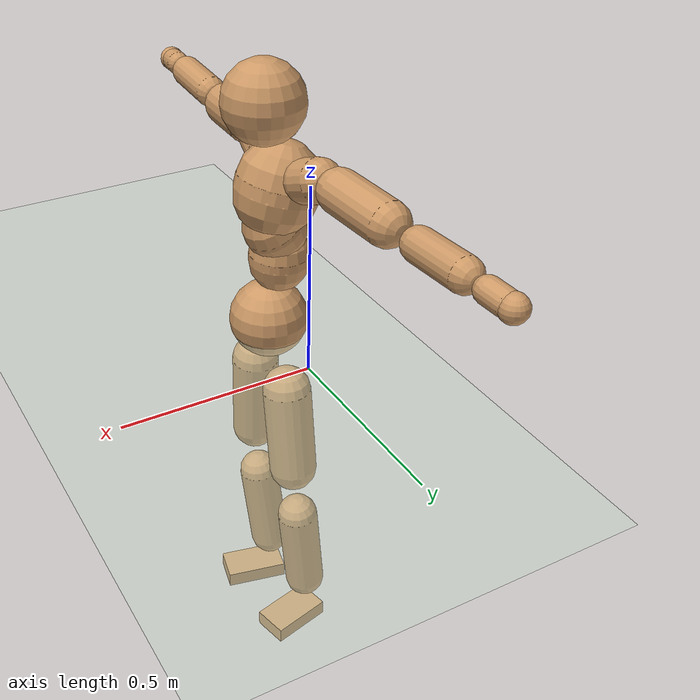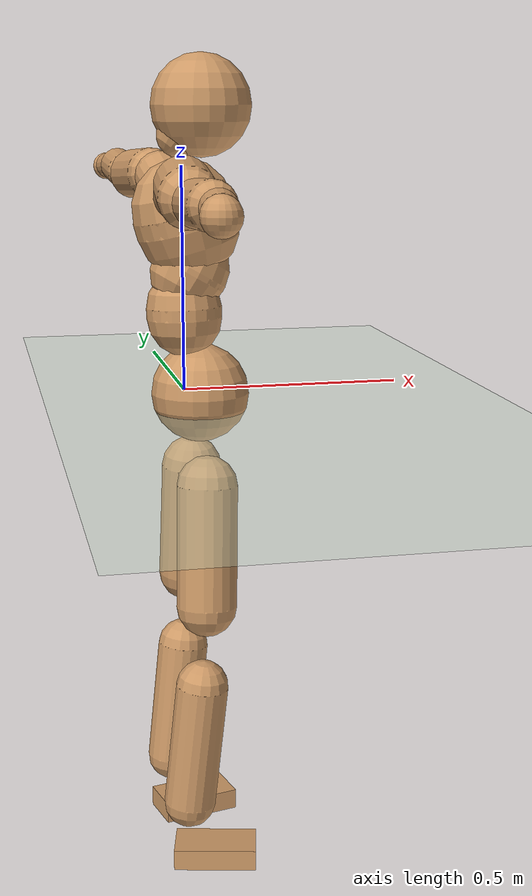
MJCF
<mujoco model="humanoid">
  <compiler coordinate="local" angle="radian"/>
  <default>
    <joint damping="0.0" armature="0.01" stiffness="0.0" limited="true"/>
    <geom conaffinity="1" condim="3" contype="7" margin="0.001" rgba="0.8 0.6 .4 1"/>
  </default>
  <asset>
    <texture type="skybox" builtin="gradient" rgb1=".4 .5 .6" rgb2="0 0 0" width="100" height="100"/>
    <texture builtin="flat" height="1278" mark="cross" markrgb="1 1 1" name="texgeom" random="0.01" rgb1="0.8 0.6 0.4" rgb2="0.8 0.6 0.4" type="cube" width="127"/>
    <texture builtin="checker" height="100" name="texplane" rgb1="0 0 0" rgb2="0.8 0.8 0.8" type="2d" width="100"/>
    <material name="MatPlane" reflectance="0.5" shininess="1" specular="1" texrepeat="60 60" texture="texplane"/>
    <material name="geom" texture="texgeom" texuniform="true"/>
  </asset>
  <worldbody>
    <light cutoff="100" diffuse="1 1 1" dir="-0 0 -1.3" directional="true" exponent="1" pos="0 0 1.3" specular=".1 .1 .1"/>
    <geom conaffinity="1" condim="3" name="floor" pos="0 0 0" rgba="0.8 0.9 0.8 1" size="100 100 .2" type="plane" material="MatPlane"/>
    <body name="Pelvis" pos="0.0007 -0.2106 0.0368">
      <freejoint name="Pelvis"/>
      <geom type="sphere" contype="1" conaffinity="1" density="500" size="0.1047" pos="0.0000 0.0000 0.0000" name="Pelvis"/>
      <body name="L_Hip" pos="-0.0036 0.0805 -0.097">
        <joint name="L_Hip_x" type="hinge" pos="0 0 0" axis="1 0 0" stiffness="800" damping="80" armature="0.02" range="-180.0000 180.0000"/>
        <joint name="L_Hip_y" type="hinge" pos="0 0 0" axis="0 1 0" stiffness="800" damping="80" armature="0.02" range="-180.0000 180.0000"/>
        <joint name="L_Hip_z" type="hinge" pos="0 0 0" axis="0 0 1" stiffness="800" damping="80" armature="0.02" range="-180.0000 180.0000"/>
        <geom type="capsule" contype="1" conaffinity="1" density="500" fromto="-0.0025 0.0074 -0.0855 -0.0100 0.0296 -0.3421" size="0.0657" name="L_Hip"/>
        <body name="L_Knee" pos="-0.0125 0.037 -0.4276">
          <joint name="L_Knee_x" type="hinge" pos="0 0 0" axis="1 0 0" stiffness="800" damping="80" armature="0.02" range="-180.0000 180.0000"/>
          <joint name="L_Knee_y" type="hinge" pos="0 0 0" axis="0 1 0" stiffness="800" damping="80" armature="0.02" range="-180.0000 180.0000"/>
          <joint name="L_Knee_z" type="hinge" pos="0 0 0" axis="0 0 1" stiffness="800" damping="80" armature="0.02" range="-180.0000 180.0000"/>
          <geom type="capsule" contype="1" conaffinity="1" density="500" fromto="-0.0102 -0.0025 -0.0923 -0.0406 -0.0099 -0.3691" size="0.0565" name="L_Knee"/>
          <body name="L_Ankle" pos="-0.0508 -0.0124 -0.4613">
            <joint name="L_Ankle_x" type="hinge" pos="0 0 0" axis="1 0 0" stiffness="800" damping="80" armature="0.02" range="-180.0000 180.0000"/>
            <joint name="L_Ankle_y" type="hinge" pos="0 0 0" axis="0 1 0" stiffness="800" damping="80" armature="0.02" range="-180.0000 180.0000"/>
            <joint name="L_Ankle_z" type="hinge" pos="0 0 0" axis="0 0 1" stiffness="800" damping="80" armature="0.02" range="-180.0000 180.0000"/>
            <geom type="box" contype="1" conaffinity="1" density="500" pos="0.0625 0.0145 -0.0328" size="0.0872 0.0499 0.0233" quat="0.9935 0.0000 0.0000 0.1140" name="L_Ankle"/>
            <body name="L_Toe" pos="0.125 0.0291 -0.0655">
              <joint name="L_Toe_x" type="hinge" pos="0 0 0" axis="1 0 0" stiffness="500" damping="50" armature="0.02" range="-180.0000 180.0000"/>
              <joint name="L_Toe_y" type="hinge" pos="0 0 0" axis="0 1 0" stiffness="500" damping="50" armature="0.02" range="-180.0000 180.0000"/>
              <joint name="L_Toe_z" type="hinge" pos="0 0 0" axis="0 0 1" stiffness="500" damping="50" armature="0.02" range="-180.0000 180.0000"/>
              <geom type="box" contype="1" conaffinity="1" density="500" pos="0.0000 0.0000 0.0322" size="0.001 0.0025 0.0011" quat="0.9928 0.0000 0.0000 0.1197" name="L_Toe"/>
            </body>
          </body>
        </body>
      </body>
      <body name="R_Hip" pos="0.0011 -0.0778 -0.097">
        <joint name="R_Hip_x" type="hinge" pos="0 0 0" axis="1 0 0" stiffness="800" damping="80" armature="0.02" range="-180.0000 180.0000"/>
        <joint name="R_Hip_y" type="hinge" pos="0 0 0" axis="0 1 0" stiffness="800" damping="80" armature="0.02" range="-180.0000 180.0000"/>
        <joint name="R_Hip_z" type="hinge" pos="0 0 0" axis="0 0 1" stiffness="800" damping="80" armature="0.02" range="-180.0000 180.0000"/>
        <geom type="capsule" contype="1" conaffinity="1" density="500" fromto="-0.0028 -0.0092 -0.0868 -0.0112 -0.0369 -0.3473" size="0.0647" name="R_Hip"/>
        <body name="R_Knee" pos="-0.014 -0.0461 -0.4342">
          <joint name="R_Knee_x" type="hinge" pos="0 0 0" axis="1 0 0" stiffness="800" damping="80" armature="0.02" range="-180.0000 180.0000"/>
          <joint name="R_Knee_y" type="hinge" pos="0 0 0" axis="0 1 0" stiffness="800" damping="80" armature="0.02" range="-180.0000 180.0000"/>
          <joint name="R_Knee_z" type="hinge" pos="0 0 0" axis="0 0 1" stiffness="800" damping="80" armature="0.02" range="-180.0000 180.0000"/>
          <geom type="capsule" contype="1" conaffinity="1" density="500" fromto="-0.0097 0.0032 -0.0928 -0.0386 0.0129 -0.3710" size="0.0567" name="R_Knee"/>
          <body name="R_Ankle" pos="-0.0483 0.0161 -0.4638">
            <joint name="R_Ankle_x" type="hinge" pos="0 0 0" axis="1 0 0" stiffness="800" damping="80" armature="0.02" range="-180.0000 180.0000"/>
            <joint name="R_Ankle_y" type="hinge" pos="0 0 0" axis="0 1 0" stiffness="800" damping="80" armature="0.02" range="-180.0000 180.0000"/>
            <joint name="R_Ankle_z" type="hinge" pos="0 0 0" axis="0 0 1" stiffness="800" damping="80" armature="0.02" range="-180.0000 180.0000"/>
            <geom type="box" contype="1" conaffinity="1" density="500" pos="0.0649 -0.0145 -0.0281" size="0.0901 0.0497 0.0233" quat="0.9939 0.0000 0.0000 -0.1099" name="R_Ankle"/>
            <body name="R_Toe" pos="0.1298 -0.029 -0.0561">
              <joint name="R_Toe_x" type="hinge" pos="0 0 0" axis="1 0 0" stiffness="500" damping="50" armature="0.02" range="-180.0000 180.0000"/>
              <joint name="R_Toe_y" type="hinge" pos="0 0 0" axis="0 1 0" stiffness="500" damping="50" armature="0.02" range="-180.0000 180.0000"/>
              <joint name="R_Toe_z" type="hinge" pos="0 0 0" axis="0 0 1" stiffness="500" damping="50" armature="0.02" range="-180.0000 180.0000"/>
              <geom type="box" contype="1" conaffinity="1" density="500" pos="0.0000 0.0000 0.0303" size="0.0009 0.0025 0.0013" quat="0.9949 0.0000 0.0000 -0.1011" name="R_Toe"/>
            </body>
          </body>
        </body>
      </body>
      <body name="Torso" pos="-0.0306 -0.0025 0.1118">
        <joint name="Torso_x" type="hinge" pos="0 0 0" axis="1 0 0" stiffness="1000" damping="100" armature="0.02" range="-180.0000 180.0000"/>
        <joint name="Torso_y" type="hinge" pos="0 0 0" axis="0 1 0" stiffness="1000" damping="100" armature="0.02" range="-180.0000 180.0000"/>
        <joint name="Torso_z" type="hinge" pos="0 0 0" axis="0 0 1" stiffness="1000" damping="100" armature="0.02" range="-180.0000 180.0000"/>
        <geom type="capsule" contype="1" conaffinity="1" density="500" fromto="-0.0022 0.0019 0.0727 -0.0015 0.0013 0.0485" size="0.0793" name="Torso"/>
        <body name="Spine" pos="-0.0037 0.0031 0.1212">
          <joint name="Spine_x" type="hinge" pos="0 0 0" axis="1 0 0" stiffness="1000" damping="100" armature="0.02" range="-180.0000 180.0000"/>
          <joint name="Spine_y" type="hinge" pos="0 0 0" axis="0 1 0" stiffness="1000" damping="100" armature="0.02" range="-180.0000 180.0000"/>
          <joint name="Spine_z" type="hinge" pos="0 0 0" axis="0 0 1" stiffness="1000" damping="100" armature="0.02" range="-180.0000 180.0000"/>
          <geom type="capsule" contype="1" conaffinity="1" density="500" fromto="0.0181 0.0006 0.0312 0.0121 0.0004 0.0208" size="0.0814" name="Spine"/>
          <body name="Chest" pos="0.0302 0.001 0.052">
            <joint name="Chest_x" type="hinge" pos="0 0 0" axis="1 0 0" stiffness="1000" damping="100" armature="0.02" range="-180.0000 180.0000"/>
            <joint name="Chest_y" type="hinge" pos="0 0 0" axis="0 1 0" stiffness="1000" damping="100" armature="0.02" range="-180.0000 180.0000"/>
            <joint name="Chest_z" type="hinge" pos="0 0 0" axis="0 0 1" stiffness="1000" damping="100" armature="0.02" range="-180.0000 180.0000"/>
            <geom type="capsule" contype="1" conaffinity="1" density="500" fromto="-0.0275 -0.0011 0.0984 -0.0183 -0.0007 0.0656" size="0.1083" name="Chest"/>
            <body name="Neck" pos="-0.0486 -0.0033 0.2349">
              <joint name="Neck_x" type="hinge" pos="0 0 0" axis="1 0 0" stiffness="500" damping="50" armature="0.02" range="-180.0000 180.0000"/>
              <joint name="Neck_y" type="hinge" pos="0 0 0" axis="0 1 0" stiffness="500" damping="50" armature="0.02" range="-180.0000 180.0000"/>
              <joint name="Neck_z" type="hinge" pos="0 0 0" axis="0 0 1" stiffness="500" damping="50" armature="0.02" range="-180.0000 180.0000"/>
              <geom type="capsule" contype="1" conaffinity="1" density="500" fromto="0.0121 0.0007 0.0147 0.0485 0.0027 0.0590" size="0.045" name="Neck"/>
              <body name="Head" pos="0.0606 0.0034 0.0737">
                <joint name="Head_x" type="hinge" pos="0 0 0" axis="1 0 0" stiffness="500" damping="50" armature="0.02" range="-180.0000 180.0000"/>
                <joint name="Head_y" type="hinge" pos="0 0 0" axis="0 1 0" stiffness="500" damping="50" armature="0.02" range="-180.0000 180.0000"/>
                <joint name="Head_z" type="hinge" pos="0 0 0" axis="0 0 1" stiffness="500" damping="50" armature="0.02" range="-180.0000 180.0000"/>
                <geom type="sphere" contype="1" conaffinity="1" density="500" size="0.1045" pos="0.0000 0.0000 0.0000" name="Head"/>
              </body>
            </body>
            <body name="L_Thorax" pos="-0.0419 0.0845 0.1293">
              <joint name="L_Thorax_x" type="hinge" pos="0 0 0" axis="1 0 0" stiffness="500" damping="50" armature="0.02" range="-180.0000 180.0000"/>
              <joint name="L_Thorax_y" type="hinge" pos="0 0 0" axis="0 1 0" stiffness="500" damping="50" armature="0.02" range="-180.0000 180.0000"/>
              <joint name="L_Thorax_z" type="hinge" pos="0 0 0" axis="0 0 1" stiffness="500" damping="50" armature="0.02" range="-180.0000 180.0000"/>
              <geom type="capsule" contype="1" conaffinity="1" density="500" fromto="-0.0021 0.0180 0.0072 -0.0086 0.0719 0.0287" size="0.0557" name="L_Thorax"/>
              <body name="L_Shoulder" pos="-0.0107 0.0899 0.0359">
                <joint name="L_Shoulder_x" type="hinge" pos="0 0 0" axis="1 0 0" stiffness="500" damping="50" armature="0.02" range="-720.0000 720.0000"/>
                <joint name="L_Shoulder_y" type="hinge" pos="0 0 0" axis="0 1 0" stiffness="500" damping="50" armature="0.02" range="-720.0000 720.0000"/>
                <joint name="L_Shoulder_z" type="hinge" pos="0 0 0" axis="0 0 1" stiffness="500" damping="50" armature="0.02" range="-720.0000 720.0000"/>
                <geom type="capsule" contype="1" conaffinity="1" density="500" fromto="-0.0061 0.0570 -0.0033 -0.0245 0.2280 -0.0131" size="0.0553" name="L_Shoulder"/>
                <body name="L_Elbow" pos="-0.0307 0.285 -0.0163">
                  <joint name="L_Elbow_x" type="hinge" pos="0 0 0" axis="1 0 0" stiffness="500" damping="50" armature="0.02" range="-720.0000 720.0000"/>
                  <joint name="L_Elbow_y" type="hinge" pos="0 0 0" axis="0 1 0" stiffness="500" damping="50" armature="0.02" range="-720.0000 720.0000"/>
                  <joint name="L_Elbow_z" type="hinge" pos="0 0 0" axis="0 0 1" stiffness="500" damping="50" armature="0.02" range="-720.0000 720.0000"/>
                  <geom type="capsule" contype="1" conaffinity="1" density="500" fromto="-0.0000 0.0526 0.0026 -0.0002 0.2102 0.0104" size="0.0419" name="L_Elbow"/>
                  <body name="L_Wrist" pos="-0.0002 0.2628 0.013">
                    <joint name="L_Wrist_x" type="hinge" pos="0 0 0" axis="1 0 0" stiffness="300" damping="30" armature="0.02" range="-180.0000 180.0000"/>
                    <joint name="L_Wrist_y" type="hinge" pos="0 0 0" axis="0 1 0" stiffness="300" damping="30" armature="0.02" range="-180.0000 180.0000"/>
                    <joint name="L_Wrist_z" type="hinge" pos="0 0 0" axis="0 0 1" stiffness="300" damping="30" armature="0.02" range="-180.0000 180.0000"/>
                    <geom type="capsule" contype="1" conaffinity="1" density="500" fromto="-0.0028 0.0166 -0.0020 -0.0110 0.0663 -0.0081" size="0.0313" name="L_Wrist"/>
                    <body name="L_Hand" pos="-0.0138 0.0829 -0.0101">
                      <joint name="L_Hand_x" type="hinge" pos="0 0 0" axis="1 0 0" stiffness="300" damping="30" armature="0.02" range="-180.0000 180.0000"/>
                      <joint name="L_Hand_y" type="hinge" pos="0 0 0" axis="0 1 0" stiffness="300" damping="30" armature="0.02" range="-180.0000 180.0000"/>
                      <joint name="L_Hand_z" type="hinge" pos="0 0 0" axis="0 0 1" stiffness="300" damping="30" armature="0.02" range="-180.0000 180.0000"/>
                      <geom type="sphere" contype="1" conaffinity="1" density="500" size="0.0334" pos="0.0000 0.0000 0.0000" name="L_Hand"/>
                    </body>
                  </body>
                </body>
              </body>
            </body>
            <body name="R_Thorax" pos="-0.0471 -0.0867 0.1276">
              <joint name="R_Thorax_x" type="hinge" pos="0 0 0" axis="1 0 0" stiffness="500" damping="50" armature="0.02" range="-180.0000 180.0000"/>
              <joint name="R_Thorax_y" type="hinge" pos="0 0 0" axis="0 1 0" stiffness="500" damping="50" armature="0.02" range="-180.0000 180.0000"/>
              <joint name="R_Thorax_z" type="hinge" pos="0 0 0" axis="0 0 1" stiffness="500" damping="50" armature="0.02" range="-180.0000 180.0000"/>
              <geom type="capsule" contype="1" conaffinity="1" density="500" fromto="-0.0022 -0.0183 0.0078 -0.0089 -0.0733 0.0310" size="0.0544" name="R_Thorax"/>
              <body name="R_Shoulder" pos="-0.0111 -0.0916 0.0388">
                <joint name="R_Shoulder_x" type="hinge" pos="0 0 0" axis="1 0 0" stiffness="500" damping="50" armature="0.02" range="-720.0000 720.0000"/>
                <joint name="R_Shoulder_y" type="hinge" pos="0 0 0" axis="0 1 0" stiffness="500" damping="50" armature="0.02" range="-720.0000 720.0000"/>
                <joint name="R_Shoulder_z" type="hinge" pos="0 0 0" axis="0 0 1" stiffness="500" damping="50" armature="0.02" range="-720.0000 720.0000"/>
                <geom type="capsule" contype="1" conaffinity="1" density="500" fromto="-0.0053 -0.0554 -0.0039 -0.0212 -0.2215 -0.0155" size="0.0573" name="R_Shoulder"/>
                <body name="R_Elbow" pos="-0.0265 -0.2769 -0.0193">
                  <joint name="R_Elbow_x" type="hinge" pos="0 0 0" axis="1 0 0" stiffness="500" damping="50" armature="0.02" range="-720.0000 720.0000"/>
                  <joint name="R_Elbow_y" type="hinge" pos="0 0 0" axis="0 1 0" stiffness="500" damping="50" armature="0.02" range="-720.0000 720.0000"/>
                  <joint name="R_Elbow_z" type="hinge" pos="0 0 0" axis="0 0 1" stiffness="500" damping="50" armature="0.02" range="-720.0000 720.0000"/>
                  <geom type="capsule" contype="1" conaffinity="1" density="500" fromto="-0.0007 -0.0546 0.0027 -0.0029 -0.2183 0.0106" size="0.0427" name="R_Elbow"/>
                  <body name="R_Wrist" pos="-0.0036 -0.2728 0.0133">
                    <joint name="R_Wrist_x" type="hinge" pos="0 0 0" axis="1 0 0" stiffness="300" damping="30" armature="0.02" range="-180.0000 180.0000"/>
                    <joint name="R_Wrist_y" type="hinge" pos="0 0 0" axis="0 1 0" stiffness="300" damping="30" armature="0.02" range="-180.0000 180.0000"/>
                    <joint name="R_Wrist_z" type="hinge" pos="0 0 0" axis="0 0 1" stiffness="300" damping="30" armature="0.02" range="-180.0000 180.0000"/>
                    <geom type="capsule" contype="1" conaffinity="1" density="500" fromto="-0.0022 -0.0169 -0.0015 -0.0087 -0.0674 -0.0062" size="0.0324" name="R_Wrist"/>
                    <body name="R_Hand" pos="-0.0109 -0.0843 -0.0077">
                      <joint name="R_Hand_x" type="hinge" pos="0 0 0" axis="1 0 0" stiffness="300" damping="30" armature="0.02" range="-180.0000 180.0000"/>
                      <joint name="R_Hand_y" type="hinge" pos="0 0 0" axis="0 1 0" stiffness="300" damping="30" armature="0.02" range="-180.0000 180.0000"/>
                      <joint name="R_Hand_z" type="hinge" pos="0 0 0" axis="0 0 1" stiffness="300" damping="30" armature="0.02" range="-180.0000 180.0000"/>
                      <geom type="sphere" contype="1" conaffinity="1" density="500" size="0.0339" pos="0.0000 0.0000 0.0000" name="R_Hand"/>
                    </body>
                  </body>
                </body>
              </body>
            </body>
          </body>
        </body>
      </body>
    </body>
  </worldbody>
  <actuator>
    <motor name="L_Hip_x" joint="L_Hip_x" gear="500"/>
    <motor name="L_Hip_y" joint="L_Hip_y" gear="500"/>
    <motor name="L_Hip_z" joint="L_Hip_z" gear="500"/>
    <motor name="L_Knee_x" joint="L_Knee_x" gear="500"/>
    <motor name="L_Knee_y" joint="L_Knee_y" gear="500"/>
    <motor name="L_Knee_z" joint="L_Knee_z" gear="500"/>
    <motor name="L_Ankle_x" joint="L_Ankle_x" gear="500"/>
    <motor name="L_Ankle_y" joint="L_Ankle_y" gear="500"/>
    <motor name="L_Ankle_z" joint="L_Ankle_z" gear="500"/>
    <motor name="L_Toe_x" joint="L_Toe_x" gear="500"/>
    <motor name="L_Toe_y" joint="L_Toe_y" gear="500"/>
    <motor name="L_Toe_z" joint="L_Toe_z" gear="500"/>
    <motor name="R_Hip_x" joint="R_Hip_x" gear="500"/>
    <motor name="R_Hip_y" joint="R_Hip_y" gear="500"/>
    <motor name="R_Hip_z" joint="R_Hip_z" gear="500"/>
    <motor name="R_Knee_x" joint="R_Knee_x" gear="500"/>
    <motor name="R_Knee_y" joint="R_Knee_y" gear="500"/>
    <motor name="R_Knee_z" joint="R_Knee_z" gear="500"/>
    <motor name="R_Ankle_x" joint="R_Ankle_x" gear="500"/>
    <motor name="R_Ankle_y" joint="R_Ankle_y" gear="500"/>
    <motor name="R_Ankle_z" joint="R_Ankle_z" gear="500"/>
    <motor name="R_Toe_x" joint="R_Toe_x" gear="500"/>
    <motor name="R_Toe_y" joint="R_Toe_y" gear="500"/>
    <motor name="R_Toe_z" joint="R_Toe_z" gear="500"/>
    <motor name="Torso_x" joint="Torso_x" gear="500"/>
    <motor name="Torso_y" joint="Torso_y" gear="500"/>
    <motor name="Torso_z" joint="Torso_z" gear="500"/>
    <motor name="Spine_x" joint="Spine_x" gear="500"/>
    <motor name="Spine_y" joint="Spine_y" gear="500"/>
    <motor name="Spine_z" joint="Spine_z" gear="500"/>
    <motor name="Chest_x" joint="Chest_x" gear="500"/>
    <motor name="Chest_y" joint="Chest_y" gear="500"/>
    <motor name="Chest_z" joint="Chest_z" gear="500"/>
    <motor name="Neck_x" joint="Neck_x" gear="500"/>
    <motor name="Neck_y" joint="Neck_y" gear="500"/>
    <motor name="Neck_z" joint="Neck_z" gear="500"/>
    <motor name="Head_x" joint="Head_x" gear="500"/>
    <motor name="Head_y" joint="Head_y" gear="500"/>
    <motor name="Head_z" joint="Head_z" gear="500"/>
    <motor name="L_Thorax_x" joint="L_Thorax_x" gear="500"/>
    <motor name="L_Thorax_y" joint="L_Thorax_y" gear="500"/>
    <motor name="L_Thorax_z" joint="L_Thorax_z" gear="500"/>
    <motor name="L_Shoulder_x" joint="L_Shoulder_x" gear="500"/>
    <motor name="L_Shoulder_y" joint="L_Shoulder_y" gear="500"/>
    <motor name="L_Shoulder_z" joint="L_Shoulder_z" gear="500"/>
    <motor name="L_Elbow_x" joint="L_Elbow_x" gear="500"/>
    <motor name="L_Elbow_y" joint="L_Elbow_y" gear="500"/>
    <motor name="L_Elbow_z" joint="L_Elbow_z" gear="500"/>
    <motor name="L_Wrist_x" joint="L_Wrist_x" gear="500"/>
    <motor name="L_Wrist_y" joint="L_Wrist_y" gear="500"/>
    <motor name="L_Wrist_z" joint="L_Wrist_z" gear="500"/>
    <motor name="L_Hand_x" joint="L_Hand_x" gear="500"/>
    <motor name="L_Hand_y" joint="L_Hand_y" gear="500"/>
    <motor name="L_Hand_z" joint="L_Hand_z" gear="500"/>
    <motor name="R_Thorax_x" joint="R_Thorax_x" gear="500"/>
    <motor name="R_Thorax_y" joint="R_Thorax_y" gear="500"/>
    <motor name="R_Thorax_z" joint="R_Thorax_z" gear="500"/>
    <motor name="R_Shoulder_x" joint="R_Shoulder_x" gear="500"/>
    <motor name="R_Shoulder_y" joint="R_Shoulder_y" gear="500"/>
    <motor name="R_Shoulder_z" joint="R_Shoulder_z" gear="500"/>
    <motor name="R_Elbow_x" joint="R_Elbow_x" gear="500"/>
    <motor name="R_Elbow_y" joint="R_Elbow_y" gear="500"/>
    <motor name="R_Elbow_z" joint="R_Elbow_z" gear="500"/>
    <motor name="R_Wrist_x" joint="R_Wrist_x" gear="500"/>
    <motor name="R_Wrist_y" joint="R_Wrist_y" gear="500"/>
    <motor name="R_Wrist_z" joint="R_Wrist_z" gear="500"/>
    <motor name="R_Hand_x" joint="R_Hand_x" gear="500"/>
    <motor name="R_Hand_y" joint="R_Hand_y" gear="500"/>
    <motor name="R_Hand_z" joint="R_Hand_z" gear="500"/>
  </actuator>
  <contact>
    <exclude body1="Torso" body2="Chest"/>
    <exclude body1="Head" body2="Chest"/>
    <exclude body1="R_Knee" body2="R_Toe"/>
    <exclude body1="R_Knee" body2="L_Ankle"/>
    <exclude body1="R_Knee" body2="L_Toe"/>
    <exclude body1="L_Knee" body2="L_Toe"/>
    <exclude body1="L_Knee" body2="R_Ankle"/>
    <exclude body1="L_Knee" body2="R_Toe"/>
    <exclude body1="L_Shoulder" body2="Chest"/>
    <exclude body1="R_Shoulder" body2="Chest"/>
  </contact>
  <sensor/>
  <size njmax="700" nconmax="700"/>
</mujoco>
